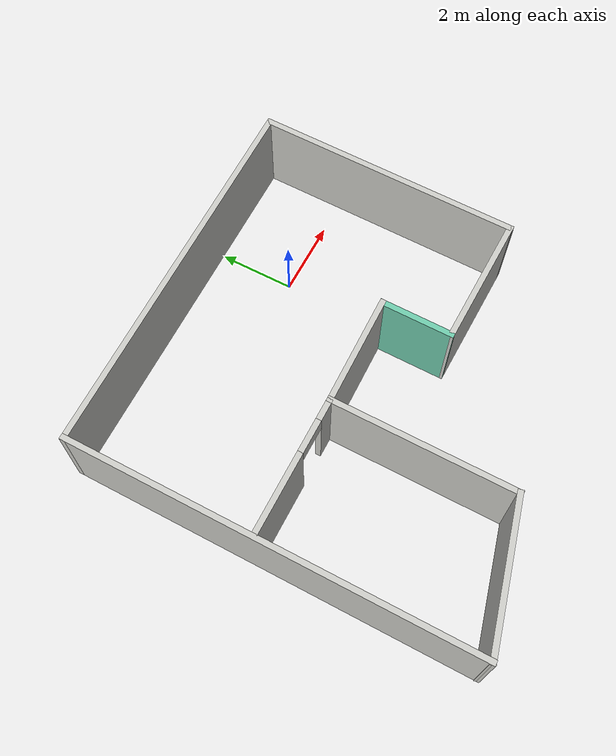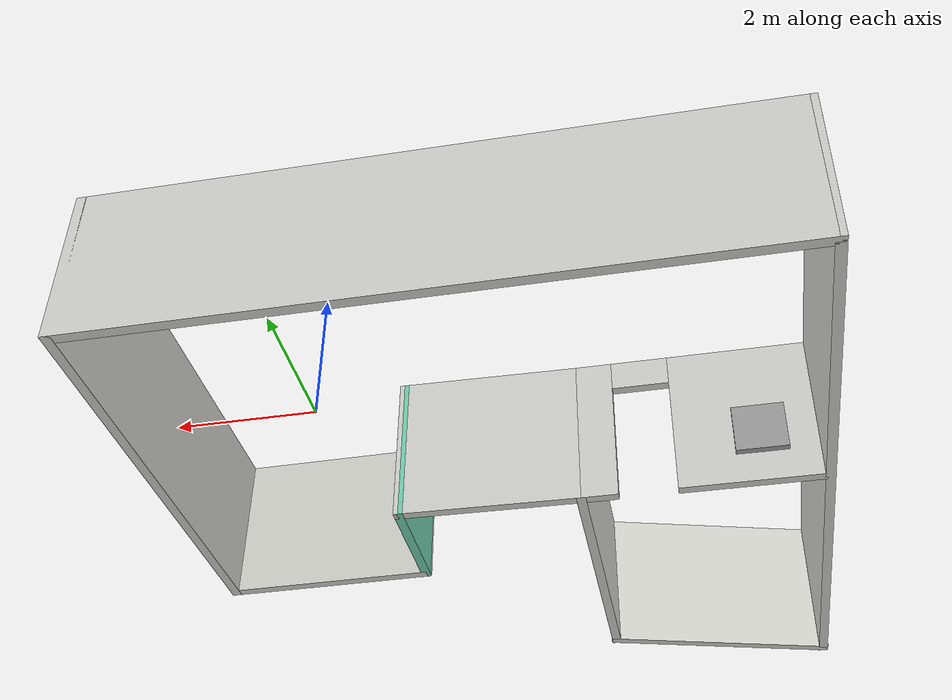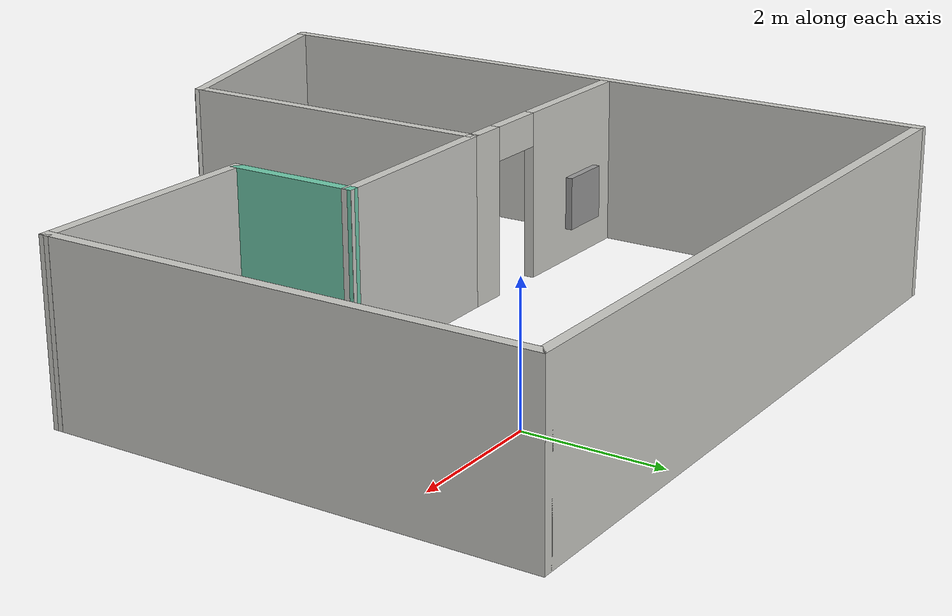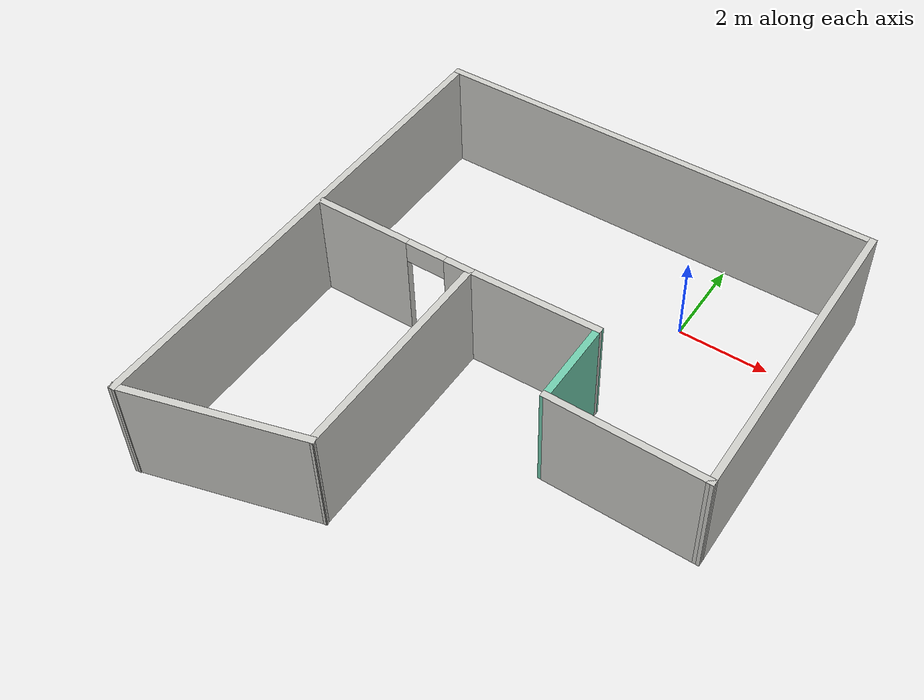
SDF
<?xml version='1.0'?>
<sdf version='1.6'>
  <model name='model'>
    <pose frame=''>-2.05114 -3.32228 0 0 -0 0</pose>
    <link name='Wall_1'>
      <collision name='Wall_1_Collision'>
        <geometry>
          <box>
            <size>11 0.15 2.5</size>
          </box>
        </geometry>
        <pose frame=''>0 0 1.25 0 -0 0</pose>
      </collision>
      <visual name='Wall_1_Visual'>
        <pose frame=''>0 0 1.25 0 -0 0</pose>
        <geometry>
          <box>
            <size>11 0.15 2.5</size>
          </box>
        </geometry>
        <material>
          <script>
            <uri>file://media/materials/scripts/gazebo.material</uri>
            <name>Gazebo/CeilingTiled</name>
          </script>
          <ambient>0.435294 0.796078 0.67451 1</ambient>
        </material>
        <meta>
          <layer>0</layer>
        </meta>
      </visual>
      <pose frame=''>-4.94886 0.008277 0 0 -0 -1.5708</pose>
    </link>
    <link name='Wall_11'>
      <collision name='Wall_11_Collision'>
        <geometry>
          <box>
            <size>7 0.15 2.5</size>
          </box>
        </geometry>
        <pose frame=''>0 0 1.25 0 -0 0</pose>
      </collision>
      <visual name='Wall_11_Visual'>
        <pose frame=''>0 0 1.25 0 -0 0</pose>
        <geometry>
          <box>
            <size>7 0.15 2.5</size>
          </box>
        </geometry>
        <material>
          <script>
            <uri>file://media/materials/scripts/gazebo.material</uri>
            <name>Gazebo/CeilingTiled</name>
          </script>
          <ambient>0.435294 0.796078 0.67451 1</ambient>
        </material>
        <meta>
          <layer>0</layer>
        </meta>
      </visual>
      <pose frame=''>4.96467 2.00864 0 0 -0 -1.5708</pose>
    </link>
    <link name='Wall_13'>
      <collision name='Wall_13_Collision'>
        <geometry>
          <box>
            <size>2 0.15 2.5</size>
          </box>
        </geometry>
        <pose frame=''>0 0 1.25 0 -0 0</pose>
      </collision>
      <visual name='Wall_13_Visual'>
        <pose frame=''>0 0 1.25 0 -0 0</pose>
        <geometry>
          <box>
            <size>2 0.15 2.5</size>
          </box>
        </geometry>
        <material>
          <script>
            <uri>file://media/materials/scripts/gazebo.material</uri>
            <name>Gazebo/Grey</name>
          </script>
          <ambient>0.435294 0.796078 0.67451 1</ambient>
        </material>
        <meta>
          <layer>0</layer>
        </meta>
      </visual>
      <pose frame=''>1.61467 -0.44136 0 0 -0 -1.5708</pose>
    </link>
    <link name='Wall_15'>
      <collision name='Wall_15_Collision'>
        <geometry>
          <box>
            <size>3.50037 0.15 2.5</size>
          </box>
        </geometry>
        <pose frame=''>0 0 1.25 0 -0 0</pose>
      </collision>
      <visual name='Wall_15_Visual'>
        <pose frame=''>0 0 1.25 0 -0 0</pose>
        <geometry>
          <box>
            <size>3.50037 0.15 2.5</size>
          </box>
        </geometry>
        <material>
          <script>
            <uri>file://media/materials/scripts/gazebo.material</uri>
            <name>Gazebo/CeilingTiled</name>
          </script>
          <ambient>0.435294 0.796078 0.67451 1</ambient>
        </material>
        <meta>
          <layer>0</layer>
        </meta>
      </visual>
      <pose frame=''>3.28967 -1.39136 0 0 -0 -0.014924</pose>
    </link>
    <link name='Wall_17'>
      <pose frame=''>-3.03509 0.433277 0 0 -0 -3.14159</pose>
      <visual name='Wall_17_Visual_0'>
        <pose frame=''>-1.55111 0 1.25 0 -0 0</pose>
        <geometry>
          <box>
            <size>0.647788 0.15 2.5</size>
          </box>
        </geometry>
        <material>
          <script>
            <uri>file://media/materials/scripts/gazebo.material</uri>
            <name>Gazebo/CeilingTiled</name>
          </script>
          <ambient>0.435294 0.796078 0.67451 1</ambient>
        </material>
        <meta>
          <layer>0</layer>
        </meta>
      </visual>
      <collision name='Wall_17_Collision_0'>
        <geometry>
          <box>
            <size>0.647788 0.15 2.5</size>
          </box>
        </geometry>
        <pose frame=''>-1.55111 0 1.25 0 -0 0</pose>
      </collision>
      <visual name='Wall_17_Visual_1'>
        <pose frame=''>0.773894 0 1.25 0 -0 0</pose>
        <geometry>
          <box>
            <size>2.20221 0.15 2.5</size>
          </box>
        </geometry>
        <material>
          <script>
            <uri>file://media/materials/scripts/gazebo.material</uri>
            <name>Gazebo/CeilingTiled</name>
          </script>
          <ambient>0.435294 0.796078 0.67451 1</ambient>
        </material>
        <meta>
          <layer>0</layer>
        </meta>
      </visual>
      <collision name='Wall_17_Collision_1'>
        <geometry>
          <box>
            <size>2.20221 0.15 2.5</size>
          </box>
        </geometry>
        <pose frame=''>0.773894 0 1.25 0 -0 0</pose>
      </collision>
      <visual name='Wall_17_Visual_2'>
        <pose frame=''>-0.777212 0 2.25 0 -0 0</pose>
        <geometry>
          <box>
            <size>0.9 0.15 0.5</size>
          </box>
        </geometry>
        <material>
          <script>
            <uri>file://media/materials/scripts/gazebo.material</uri>
            <name>Gazebo/CeilingTiled</name>
          </script>
          <ambient>0.435294 0.796078 0.67451 1</ambient>
        </material>
        <meta>
          <layer>0</layer>
        </meta>
      </visual>
      <collision name='Wall_17_Collision_2'>
        <geometry>
          <box>
            <size>0.9 0.15 0.5</size>
          </box>
        </geometry>
        <pose frame=''>-0.777212 0 2.25 0 -0 0</pose>
      </collision>
    </link>
    <link name='Wall_2'>
      <collision name='Wall_2_Collision'>
        <geometry>
          <box>
            <size>3.99627 0.15 2.5</size>
          </box>
        </geometry>
        <pose frame=''>0 0 1.25 0 -0 0</pose>
      </collision>
      <visual name='Wall_2_Visual'>
        <pose frame=''>0 0 1.25 0 -0 0</pose>
        <geometry>
          <box>
            <size>3.99627 0.15 2.5</size>
          </box>
        </geometry>
        <material>
          <script>
            <uri>file://media/materials/scripts/gazebo.material</uri>
            <name>Gazebo/CeilingTiled</name>
          </script>
          <ambient>0.435294 0.796078 0.67451 1</ambient>
        </material>
        <meta>
          <layer>0</layer>
        </meta>
      </visual>
      <pose frame=''>-3.09186 -4.91672 0 0 -0 0.263014</pose>
    </link>
    <link name='Wall_3'>
      <collision name='Wall_3_Collision'>
        <geometry>
          <box>
            <size>5 0.15 2.5</size>
          </box>
        </geometry>
        <pose frame=''>0 0 1.25 0 -0 0</pose>
      </collision>
      <visual name='Wall_3_Visual'>
        <pose frame=''>0 0 1.25 0 -0 0</pose>
        <geometry>
          <box>
            <size>5 0.15 2.5</size>
          </box>
        </geometry>
        <material>
          <script>
            <uri>file://media/materials/scripts/gazebo.material</uri>
            <name>Gazebo/CeilingTiled</name>
          </script>
          <ambient>0.435294 0.796078 0.67451 1</ambient>
        </material>
        <meta>
          <layer>0</layer>
        </meta>
      </visual>
      <pose frame=''>-1.23486 -1.99172 0 0 -0 1.5708</pose>
    </link>
    <link name='Wall_4'>
      <collision name='Wall_4_Collision'>
        <geometry>
          <box>
            <size>3.00044 0.15 2.5</size>
          </box>
        </geometry>
        <pose frame=''>0 0 1.25 0 -0 0</pose>
      </collision>
      <visual name='Wall_4_Visual'>
        <pose frame=''>0 0 1.25 0 -0 0</pose>
        <geometry>
          <box>
            <size>3.00044 0.15 2.5</size>
          </box>
        </geometry>
        <material>
          <script>
            <uri>file://media/materials/scripts/gazebo.material</uri>
            <name>Gazebo/CeilingTiled</name>
          </script>
          <ambient>0.435294 0.796078 0.67451 1</ambient>
        </material>
        <meta>
          <layer>0</layer>
        </meta>
      </visual>
      <pose frame=''>0.189905 0.458459 0 0 -0 0.017672</pose>
    </link>
    <link name='Wall_9'>
      <collision name='Wall_9_Collision'>
        <geometry>
          <box>
            <size>10.0635 0.15 2.5</size>
          </box>
        </geometry>
        <pose frame=''>0 0 1.25 0 -0 0</pose>
      </collision>
      <visual name='Wall_9_Visual'>
        <pose frame=''>0 0 1.25 0 -0 0</pose>
        <geometry>
          <box>
            <size>10.0635 0.15 2.5</size>
          </box>
        </geometry>
        <material>
          <script>
            <uri>file://media/materials/scripts/gazebo.material</uri>
            <name>Gazebo/CeilingTiled</name>
          </script>
          <ambient>0.435294 0.796078 0.67451 1</ambient>
        </material>
        <meta>
          <layer>0</layer>
        </meta>
      </visual>
      <pose frame=''>0.007905 5.43346 0 0 -0 3.7e-05</pose>
    </link>
    <link name='Window_0'>
      <collision name='Window_0_Collision'>
        <geometry>
          <box>
            <size>0.8 0.17 0.8</size>
          </box>
        </geometry>
        <pose frame=''>0 0 0.4 0 -0 0</pose>
      </collision>
      <visual name='Window_0_Visual'>
        <pose frame=''>0 0 0.4 0 -0 0</pose>
        <geometry>
          <box>
            <size>0.8 0.17 0.8</size>
          </box>
        </geometry>
        <material>
          <script>
            <uri>file://media/materials/scripts/gazebo.material</uri>
            <name>Gazebo/Grey</name>
          </script>
        </material>
      </visual>
      <pose frame=''>-4.01682 0.530032 0.5 0 -0 0</pose>
    </link>
    <static>1</static>
  </model>
</sdf>
